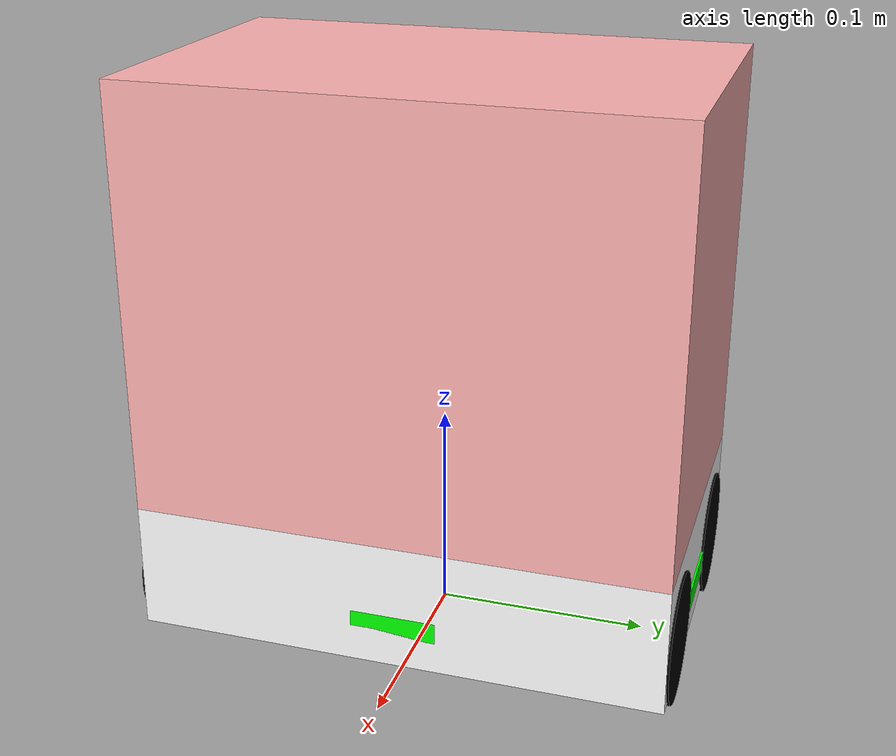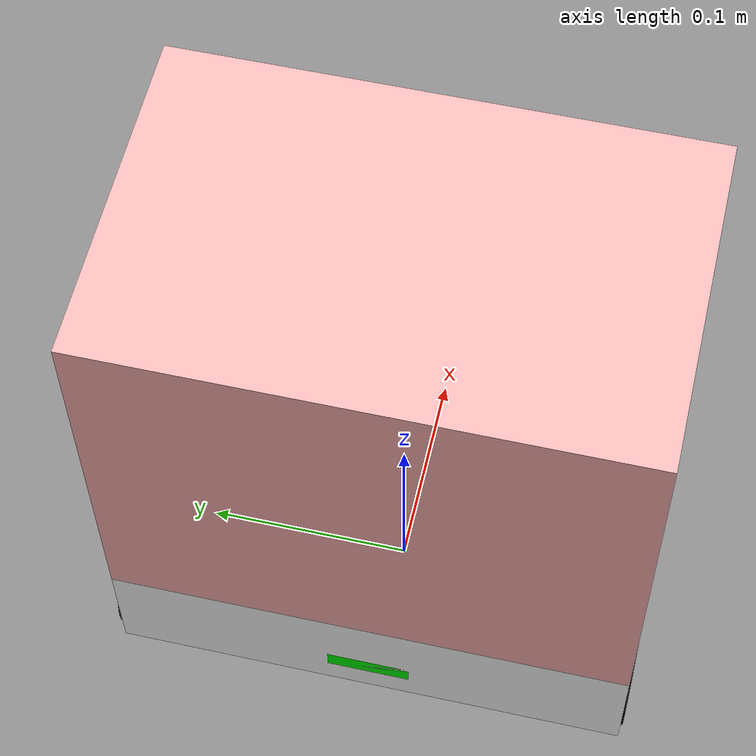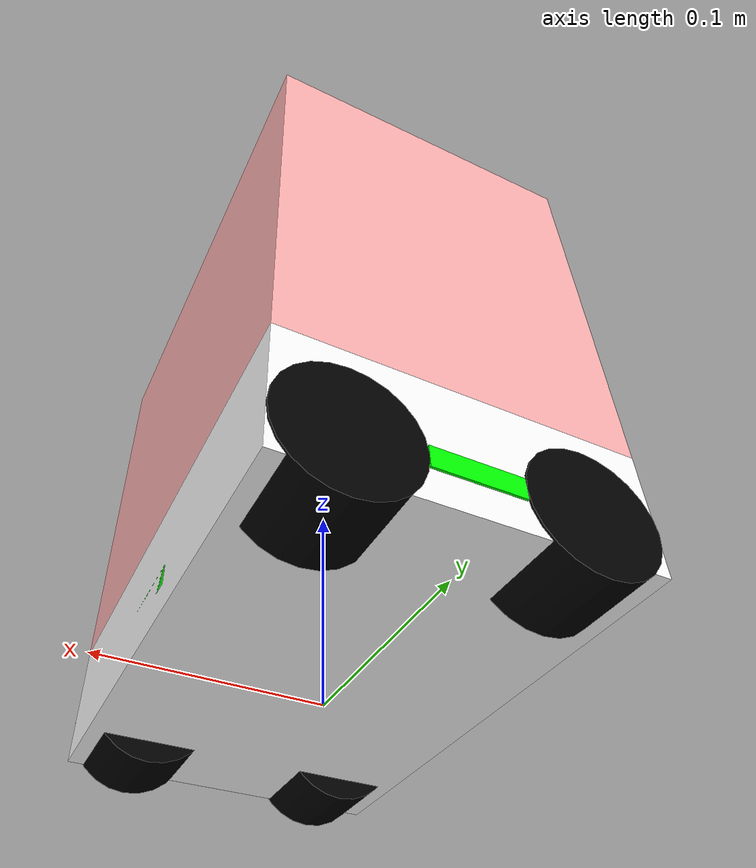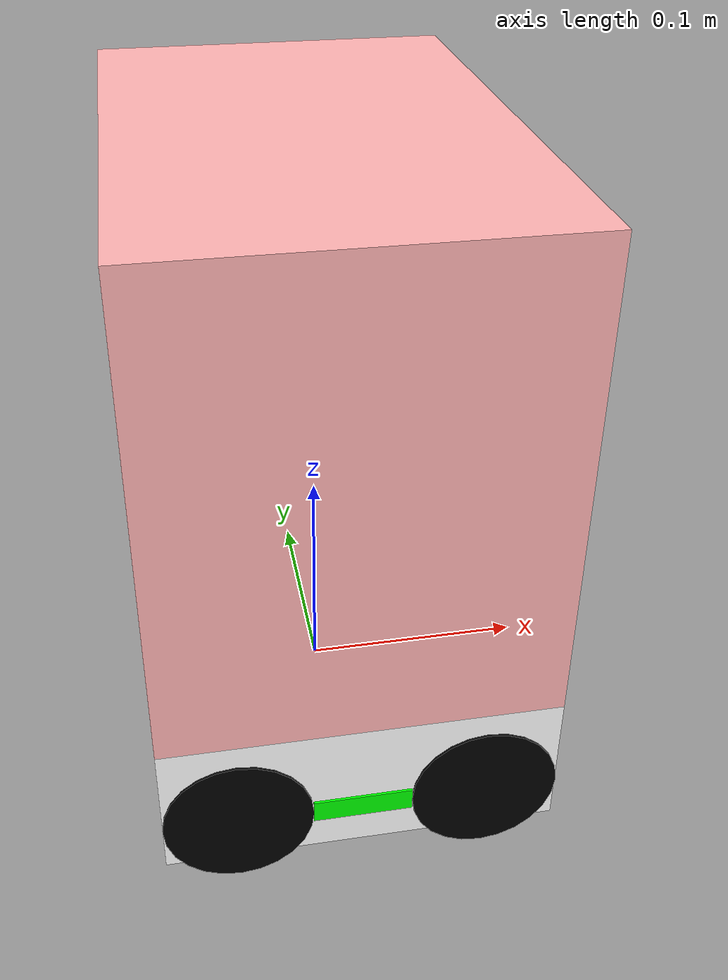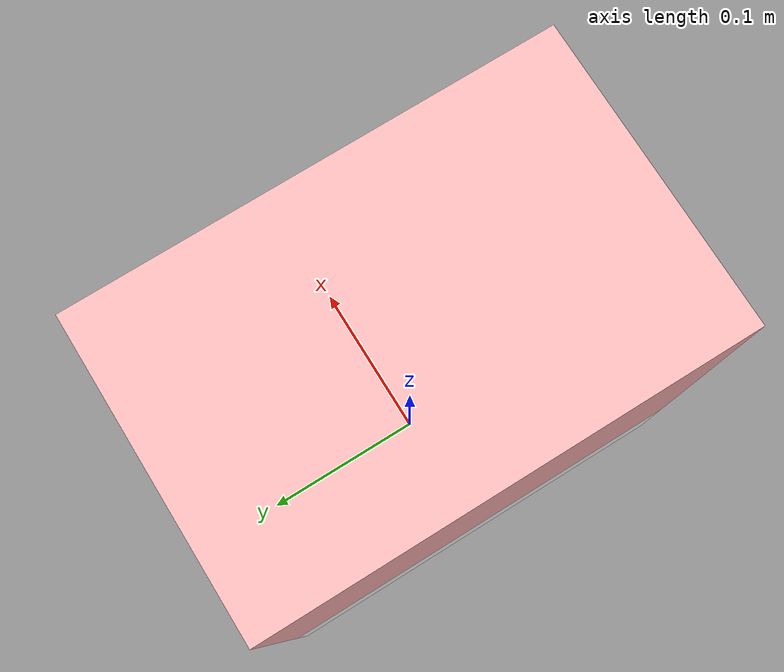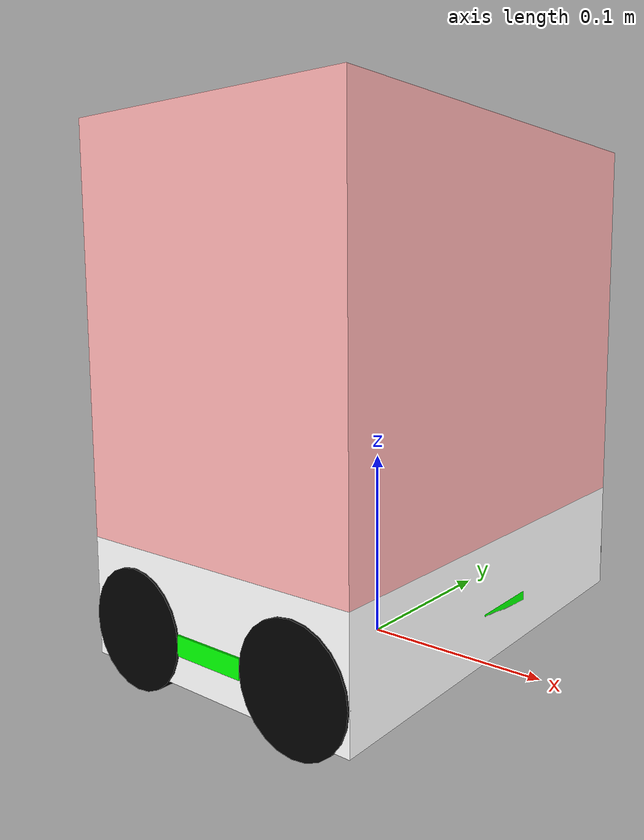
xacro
<?xml version="1.0"?>
<robot xmlns:xacro="http://www.ros.org/wiki/xacro" name="Cortex">

    <!-- Constants -->
    <!-- All physical properties use the metric system -->
    <xacro:property name="PI" value="3.1415926535897931" />

    <!-- Base -->
    <xacro:property name="base_size_width" value="0.25" />
    <xacro:property name="base_size_length" value="0.16" />
    <xacro:property name="base_size_height" value="0.06" />
    <xacro:property name="base_ground_offset" value="0.01" />

    <xacro:property name="base_mass" value="1" />

    <!-- Top -->
    <xacro:property name="top_size_height" value="0.2" />
    <xacro:property name="top_mass" value="2" />

    <!-- Wheels -->
    <xacro:property name="wheel_radius" value="0.03" />
    <xacro:property name="wheel_width" value="0.04" />
    <xacro:property name="wheel_mass" value="0.086" />
    <xacro:property name="wheel_mass" value="0.086" />

	<!--ultrasound -->
	<xacro:property name="ultrasound_size_front_rear" value = "0.02 0.04 0.01" />
    <xacro:property name="ultrasound_size_right_left" value = "0.04 0.02 0.01" />

    <!-- Motors -->
    <!-- Polulu motor:  https://www.pololu.com/product/2824/specs -->
    <!-- Max torque: 170 oz·in = 1.2 Nm -->
    <xacro:property name="motor_max_torque" value="1.2" />
    <!-- Max velocity: 200 rpm = 20 rad/s -->
    <xacro:property name="motor_max_velocity" value="20" />

    <!-- Macros for inertia -->
    <xacro:macro name="default_inertial" params="mass">
        <inertial>
            <mass value="${mass}" />
            <inertia ixx="1.0" ixy="0.0" ixz="0.0"
                     iyy="1.0" iyz="0.0"
                     izz="1.0" />
        </inertial>
    </xacro:macro>

    <xacro:macro name="box_inertial" params="mass x y z">
        <inertial>
            <mass value="${mass}" />
            <inertia ixx="${1/12 * mass * (z**2 + y**2)}" ixy="0.0" ixz="0.0"
                     iyy="${1/12 * mass * (x**2 + y**2)}" iyz="0.0"
                     izz="${1/12 * mass * (x**2 + z**2)}" />
        </inertial>
    </xacro:macro>

    <xacro:macro name="cylinder_inertial" params="mass r z">
        <inertial>
            <mass value="${mass}" />
            <inertia ixx="${1/12 * mass * (3 * r**2 + z**2)}" ixy="0.0" ixz="0.0"
                     iyy="${1/12 * mass * (3 * r**2 + z**2)}" iyz="0.0"
                     izz="${1/2 * mass * r**2}" />
        </inertial>

    </xacro:macro>

    <!-- Links -->

    <link name="base_link">
        <visual>
            <geometry>
                <box size="${base_size_length} ${base_size_width - 0.002} ${base_size_height}"/>
            </geometry>
            <origin rpy="0 0 0" xyz="0 0 ${base_size_height/2 + base_ground_offset}"/>
            <material name="white">
                <color rgba="1 1 1 1"/>
            </material>
        </visual>

        <collision>
            <geometry>
                <box size="${base_size_length} ${base_size_width - 0.002} ${base_size_height}"/>
            </geometry>
        </collision>

        <xacro:box_inertial mass="${base_mass}" x="${base_size_length}" y="${base_size_width}" z="${base_size_height}"/>
    </link>

    <link name="top">
        <visual>
            <geometry>
                <box size="${base_size_length} ${base_size_width - 0.002} ${top_size_height}"/>
            </geometry>
            <origin rpy="0 0 0" xyz="0 0 ${base_size_height + base_ground_offset + top_size_height/2}"/>
            <material name="pink">
                <color rgba="1 0.7 0.7 1"/>
            </material>
        </visual>

        <collision>
            <geometry>
                <box size="${base_size_length} ${base_size_width - 0.002} ${top_size_height}"/>
            </geometry>
        </collision>

        <xacro:box_inertial mass="${top_mass}" x="${base_size_length}" y="${base_size_width}" z="${top_size_height}"/>
    </link>

    <joint name="base_link_to_top" type="fixed">
        <parent link="base_link"/>
        <child link="top"/>
        <origin xyz="0 0 0"/>
    </joint>

    <xacro:macro name="wheel" params="suffix offset_x offset_y">
        <link name="wheel_${suffix}">
            <visual>
                <geometry>
                    <cylinder length="${wheel_width}" radius="${wheel_radius}"/>
                </geometry>
                <origin rpy="${PI/2} 0 0" /> <!-- xyz="${offset_x} ${offset_y} ${wheel_radius}" -->
                <material name="black">
                    <color rgba="0 0 0 1"/>
                </material>
            </visual>

            <xacro:cylinder_inertial mass="${wheel_mass}" r="${wheel_radius}" z="${wheel_width}"/>
        </link>

        <joint name="base_link_to_wheel_${suffix}" type="continuous">
            <parent link="base_link"/>
            <child link="wheel_${suffix}"/>
            <axis xyz="0 1 0"/>
            <origin xyz="${offset_x} ${offset_y} ${wheel_radius}"/>
            <limit effort ="${motor_max_torque}" velocity="${motor_max_velocity}"/>
        </joint>
    </xacro:macro>

	<xacro:macro name="ultrasound" params="suffix offset_x offset_y offset_z rot_x rot_y rot_z">
        <link name="ultrasound_${suffix}">
            <visual>
                <geometry>
                    <box size="0.02 0.04 0.01" />
                </geometry>
                <origin rpy="0 0 0" xyz="0 0 0" />
                <material name="green">
                    <color rgba="0 1 0 1"/>
                </material>
            </visual>
        </link>

        <joint name="base_link_to_ultrasound_${suffix}" type="fixed">
            <parent link="base_link"/>
            <child link="ultrasound_${suffix}"/>
           <origin rpy="${rot_x} ${rot_y} ${rot_z}" xyz="${offset_x} ${offset_y} ${offset_z}"/>
        </joint>
    </xacro:macro>

    <xacro:wheel suffix="front_left" offset_x="${base_size_length/2 - wheel_radius}" offset_y="${-(base_size_width/2 - wheel_width/2)}"/>
    <xacro:wheel suffix="front_right" offset_x="${base_size_length/2 - wheel_radius}" offset_y="${base_size_width/2 - wheel_width/2}"/>
    <xacro:wheel suffix="rear_left" offset_x="${-(base_size_length/2 - wheel_radius)}" offset_y="${-(base_size_width/2 - wheel_width/2)}"/>
    <xacro:wheel suffix="rear_right" offset_x="${-(base_size_length/2 - wheel_radius)}" offset_y="${base_size_width/2 - wheel_width/2}"/>

	<xacro:ultrasound suffix="front" offset_x="${base_size_length/2 - 0.02/2}" offset_y="0" offset_z="0.03" rot_x="0" rot_y="0" rot_z="0" />
	<xacro:ultrasound suffix="rear" offset_x="${-(base_size_length/2 - 0.02/2)}" offset_y="0" offset_z="0.03" rot_x="0" rot_y="0" rot_z="${PI}" />
	<xacro:ultrasound suffix="left" offset_x="0" offset_y="${base_size_width/2 - 0.02/2}" offset_z="0.03" rot_x="0" rot_y="0" rot_z="${PI/2}" />
	<xacro:ultrasound suffix="right" offset_x="0" offset_y="${-(base_size_width/2 - 0.02/2)}" offset_z="0.03" rot_x="0" rot_y="0" rot_z="${-PI/2}" />

</robot>
